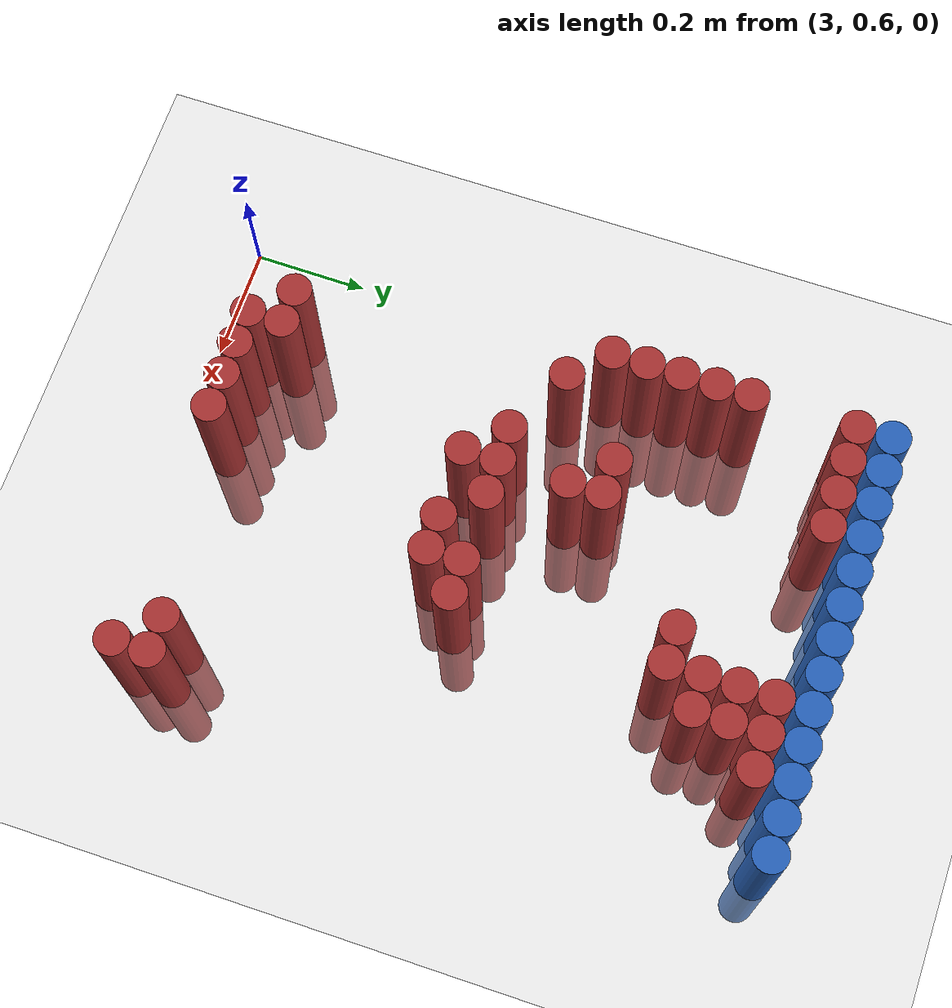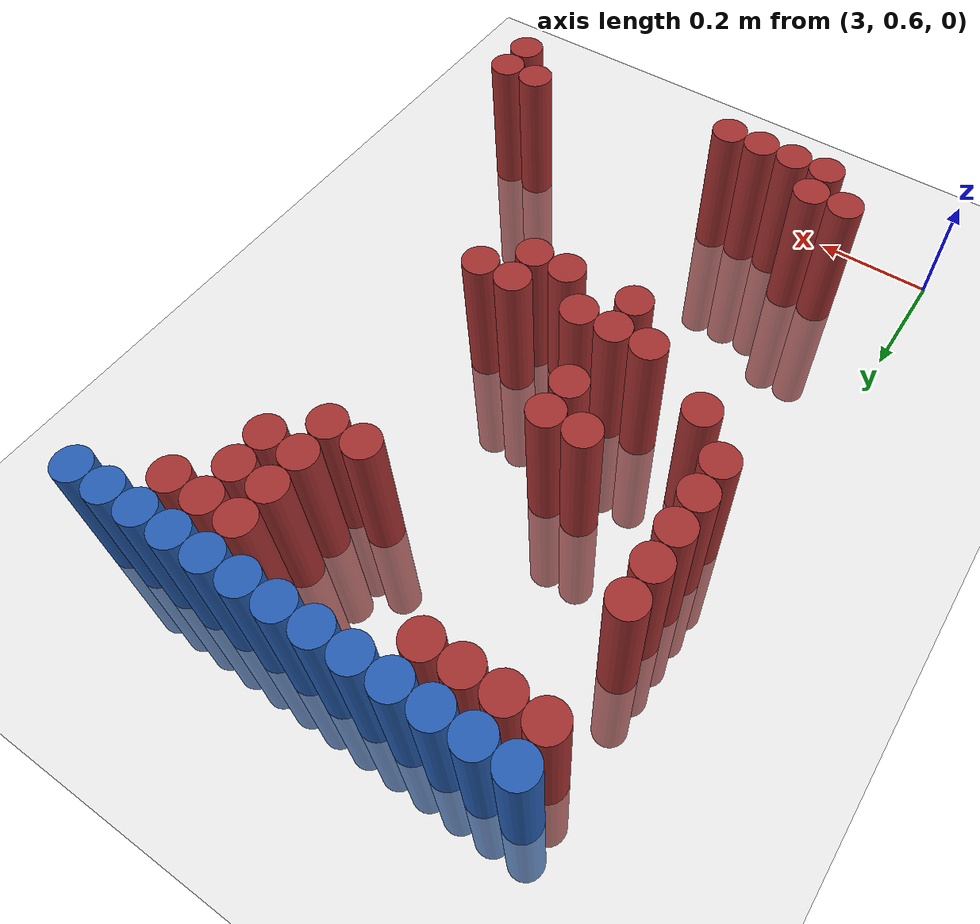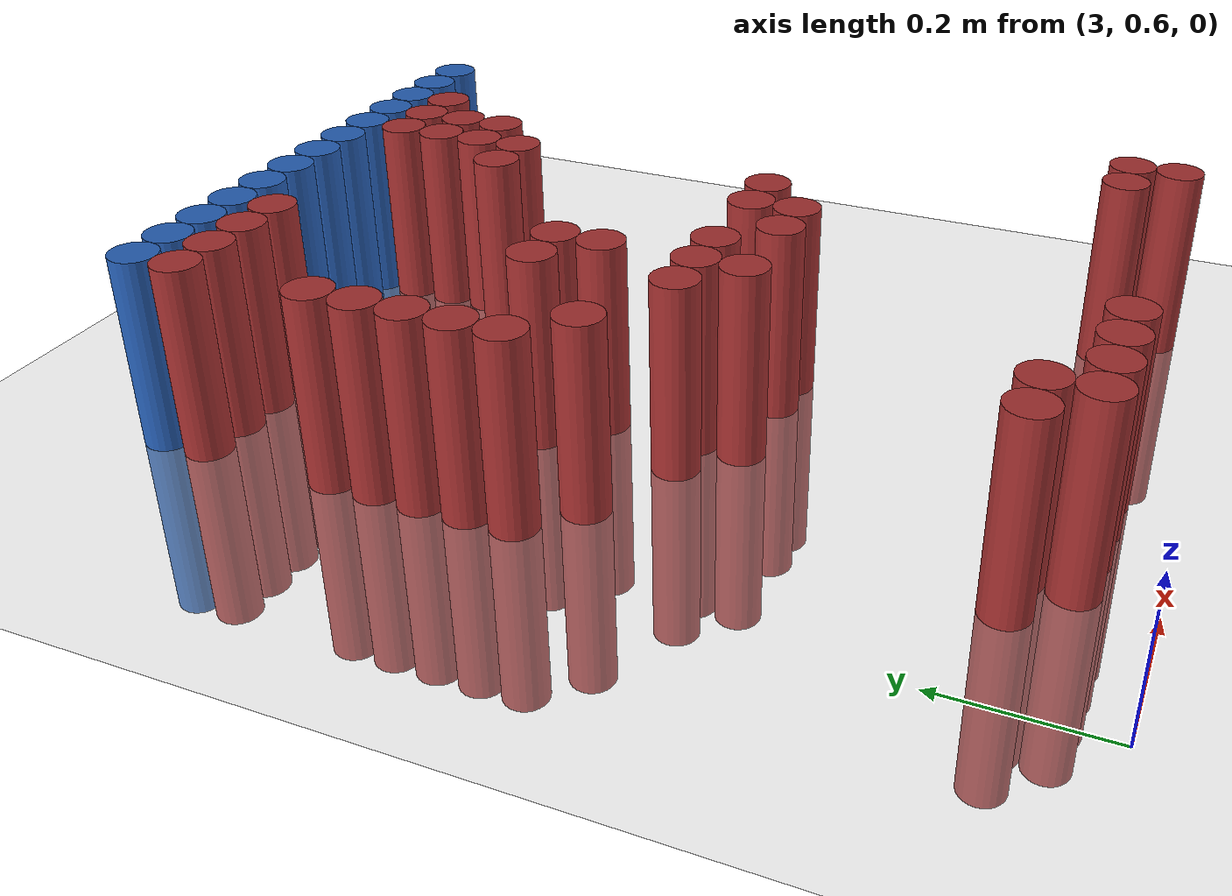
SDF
<sdf version="1.6">
 <world name="default">
  <model name="ground_plane">
   <static>1</static>
   <link name="link">
    <collision name="collision">
     <geometry><plane><normal>0 0 1</normal><size>100 100</size></plane></geometry>
     <surface><friction><ode><mu>100</mu><mu2>50</mu2></ode></friction></surface>
    </collision>
    <visual name="visual">
     <cast_shadows>0</cast_shadows>
     <geometry><plane><normal>0 0 1</normal><size>100 100</size></plane></geometry>
     <material>
      <script><uri>file://media/materials/scripts/gazebo.material</uri><name>Gazebo/Grey</name></script>
     </material>
    </visual>
   </link>
  </model>
  <model name="unit_cylinder_112">
   <static>1</static>
   <pose>3.090000 1.770000 0.000000 0.000000 0.000000 0.000000</pose>
   <link name="link">
    <inertial>
     <mass>1</mass>
     <inertia><ixx>0.145833</ixx><ixy>0</ixy><ixz>0</ixz><iyy>0.145833</iyy><iyz>0</iyz><izz>0.125</izz></inertia>
    </inertial>
    <collision name="collision">
     <geometry><cylinder><radius>0.030000</radius><length>0.5</length></cylinder></geometry>
    </collision>
    <visual name="visual">
     <geometry><cylinder><radius>0.030000</radius><length>0.5</length></cylinder></geometry>
     <material>
      <ambient>0.152000 0.379000 0.720000 1</ambient>
      <diffuse>0.152000 0.379000 0.720000 1</diffuse>
     </material>
     <material>
      <script><name>Gazebo/Grey</name><uri>file://media/materials/scripts/gazebo.material</uri></script>
     </material>
    </visual>
   </link>
  </model>
  <model name="unit_cylinder_113">
   <static>1</static>
   <pose>3.150000 1.770000 0.000000 0.000000 0.000000 0.000000</pose>
   <link name="link">
    <inertial>
     <mass>1</mass>
     <inertia><ixx>0.145833</ixx><ixy>0</ixy><ixz>0</ixz><iyy>0.145833</iyy><iyz>0</iyz><izz>0.125</izz></inertia>
    </inertial>
    <collision name="collision">
     <geometry><cylinder><radius>0.030000</radius><length>0.5</length></cylinder></geometry>
    </collision>
    <visual name="visual">
     <geometry><cylinder><radius>0.030000</radius><length>0.5</length></cylinder></geometry>
     <material>
      <ambient>0.152000 0.379000 0.720000 1</ambient>
      <diffuse>0.152000 0.379000 0.720000 1</diffuse>
     </material>
     <material>
      <script><name>Gazebo/Grey</name><uri>file://media/materials/scripts/gazebo.material</uri></script>
     </material>
    </visual>
   </link>
  </model>
  <model name="unit_cylinder_114">
   <static>1</static>
   <pose>3.210000 1.770000 0.000000 0.000000 0.000000 0.000000</pose>
   <link name="link">
    <inertial>
     <mass>1</mass>
     <inertia><ixx>0.145833</ixx><ixy>0</ixy><ixz>0</ixz><iyy>0.145833</iyy><iyz>0</iyz><izz>0.125</izz></inertia>
    </inertial>
    <collision name="collision">
     <geometry><cylinder><radius>0.030000</radius><length>0.5</length></cylinder></geometry>
    </collision>
    <visual name="visual">
     <geometry><cylinder><radius>0.030000</radius><length>0.5</length></cylinder></geometry>
     <material>
      <ambient>0.152000 0.379000 0.720000 1</ambient>
      <diffuse>0.152000 0.379000 0.720000 1</diffuse>
     </material>
     <material>
      <script><name>Gazebo/Grey</name><uri>file://media/materials/scripts/gazebo.material</uri></script>
     </material>
    </visual>
   </link>
  </model>
  <model name="unit_cylinder_115">
   <static>1</static>
   <pose>3.270000 1.770000 0.000000 0.000000 0.000000 0.000000</pose>
   <link name="link">
    <inertial>
     <mass>1</mass>
     <inertia><ixx>0.145833</ixx><ixy>0</ixy><ixz>0</ixz><iyy>0.145833</iyy><iyz>0</iyz><izz>0.125</izz></inertia>
    </inertial>
    <collision name="collision">
     <geometry><cylinder><radius>0.030000</radius><length>0.5</length></cylinder></geometry>
    </collision>
    <visual name="visual">
     <geometry><cylinder><radius>0.030000</radius><length>0.5</length></cylinder></geometry>
     <material>
      <ambient>0.152000 0.379000 0.720000 1</ambient>
      <diffuse>0.152000 0.379000 0.720000 1</diffuse>
     </material>
     <material>
      <script><name>Gazebo/Grey</name><uri>file://media/materials/scripts/gazebo.material</uri></script>
     </material>
    </visual>
   </link>
  </model>
  <model name="unit_cylinder_116">
   <static>1</static>
   <pose>3.330000 1.770000 0.000000 0.000000 0.000000 0.000000</pose>
   <link name="link">
    <inertial>
     <mass>1</mass>
     <inertia><ixx>0.145833</ixx><ixy>0</ixy><ixz>0</ixz><iyy>0.145833</iyy><iyz>0</iyz><izz>0.125</izz></inertia>
    </inertial>
    <collision name="collision">
     <geometry><cylinder><radius>0.030000</radius><length>0.5</length></cylinder></geometry>
    </collision>
    <visual name="visual">
     <geometry><cylinder><radius>0.030000</radius><length>0.5</length></cylinder></geometry>
     <material>
      <ambient>0.152000 0.379000 0.720000 1</ambient>
      <diffuse>0.152000 0.379000 0.720000 1</diffuse>
     </material>
     <material>
      <script><name>Gazebo/Grey</name><uri>file://media/materials/scripts/gazebo.material</uri></script>
     </material>
    </visual>
   </link>
  </model>
  <model name="unit_cylinder_117">
   <static>1</static>
   <pose>3.390000 1.770000 0.000000 0.000000 0.000000 0.000000</pose>
   <link name="link">
    <inertial>
     <mass>1</mass>
     <inertia><ixx>0.145833</ixx><ixy>0</ixy><ixz>0</ixz><iyy>0.145833</iyy><iyz>0</iyz><izz>0.125</izz></inertia>
    </inertial>
    <collision name="collision">
     <geometry><cylinder><radius>0.030000</radius><length>0.5</length></cylinder></geometry>
    </collision>
    <visual name="visual">
     <geometry><cylinder><radius>0.030000</radius><length>0.5</length></cylinder></geometry>
     <material>
      <ambient>0.152000 0.379000 0.720000 1</ambient>
      <diffuse>0.152000 0.379000 0.720000 1</diffuse>
     </material>
     <material>
      <script><name>Gazebo/Grey</name><uri>file://media/materials/scripts/gazebo.material</uri></script>
     </material>
    </visual>
   </link>
  </model>
  <model name="unit_cylinder_118">
   <static>1</static>
   <pose>3.450000 1.770000 0.000000 0.000000 0.000000 0.000000</pose>
   <link name="link">
    <inertial>
     <mass>1</mass>
     <inertia><ixx>0.145833</ixx><ixy>0</ixy><ixz>0</ixz><iyy>0.145833</iyy><iyz>0</iyz><izz>0.125</izz></inertia>
    </inertial>
    <collision name="collision">
     <geometry><cylinder><radius>0.030000</radius><length>0.5</length></cylinder></geometry>
    </collision>
    <visual name="visual">
     <geometry><cylinder><radius>0.030000</radius><length>0.5</length></cylinder></geometry>
     <material>
      <ambient>0.152000 0.379000 0.720000 1</ambient>
      <diffuse>0.152000 0.379000 0.720000 1</diffuse>
     </material>
     <material>
      <script><name>Gazebo/Grey</name><uri>file://media/materials/scripts/gazebo.material</uri></script>
     </material>
    </visual>
   </link>
  </model>
  <model name="unit_cylinder_119">
   <static>1</static>
   <pose>3.510000 1.770000 0.000000 0.000000 0.000000 0.000000</pose>
   <link name="link">
    <inertial>
     <mass>1</mass>
     <inertia><ixx>0.145833</ixx><ixy>0</ixy><ixz>0</ixz><iyy>0.145833</iyy><iyz>0</iyz><izz>0.125</izz></inertia>
    </inertial>
    <collision name="collision">
     <geometry><cylinder><radius>0.030000</radius><length>0.5</length></cylinder></geometry>
    </collision>
    <visual name="visual">
     <geometry><cylinder><radius>0.030000</radius><length>0.5</length></cylinder></geometry>
     <material>
      <ambient>0.152000 0.379000 0.720000 1</ambient>
      <diffuse>0.152000 0.379000 0.720000 1</diffuse>
     </material>
     <material>
      <script><name>Gazebo/Grey</name><uri>file://media/materials/scripts/gazebo.material</uri></script>
     </material>
    </visual>
   </link>
  </model>
  <model name="unit_cylinder_120">
   <static>1</static>
   <pose>3.570000 1.770000 0.000000 0.000000 0.000000 0.000000</pose>
   <link name="link">
    <inertial>
     <mass>1</mass>
     <inertia><ixx>0.145833</ixx><ixy>0</ixy><ixz>0</ixz><iyy>0.145833</iyy><iyz>0</iyz><izz>0.125</izz></inertia>
    </inertial>
    <collision name="collision">
     <geometry><cylinder><radius>0.030000</radius><length>0.5</length></cylinder></geometry>
    </collision>
    <visual name="visual">
     <geometry><cylinder><radius>0.030000</radius><length>0.5</length></cylinder></geometry>
     <material>
      <ambient>0.152000 0.379000 0.720000 1</ambient>
      <diffuse>0.152000 0.379000 0.720000 1</diffuse>
     </material>
     <material>
      <script><name>Gazebo/Grey</name><uri>file://media/materials/scripts/gazebo.material</uri></script>
     </material>
    </visual>
   </link>
  </model>
  <model name="unit_cylinder_121">
   <static>1</static>
   <pose>3.630000 1.770000 0.000000 0.000000 0.000000 0.000000</pose>
   <link name="link">
    <inertial>
     <mass>1</mass>
     <inertia><ixx>0.145833</ixx><ixy>0</ixy><ixz>0</ixz><iyy>0.145833</iyy><iyz>0</iyz><izz>0.125</izz></inertia>
    </inertial>
    <collision name="collision">
     <geometry><cylinder><radius>0.030000</radius><length>0.5</length></cylinder></geometry>
    </collision>
    <visual name="visual">
     <geometry><cylinder><radius>0.030000</radius><length>0.5</length></cylinder></geometry>
     <material>
      <ambient>0.152000 0.379000 0.720000 1</ambient>
      <diffuse>0.152000 0.379000 0.720000 1</diffuse>
     </material>
     <material>
      <script><name>Gazebo/Grey</name><uri>file://media/materials/scripts/gazebo.material</uri></script>
     </material>
    </visual>
   </link>
  </model>
  <model name="unit_cylinder_122">
   <static>1</static>
   <pose>3.690000 1.770000 0.000000 0.000000 0.000000 0.000000</pose>
   <link name="link">
    <inertial>
     <mass>1</mass>
     <inertia><ixx>0.145833</ixx><ixy>0</ixy><ixz>0</ixz><iyy>0.145833</iyy><iyz>0</iyz><izz>0.125</izz></inertia>
    </inertial>
    <collision name="collision">
     <geometry><cylinder><radius>0.030000</radius><length>0.5</length></cylinder></geometry>
    </collision>
    <visual name="visual">
     <geometry><cylinder><radius>0.030000</radius><length>0.5</length></cylinder></geometry>
     <material>
      <ambient>0.152000 0.379000 0.720000 1</ambient>
      <diffuse>0.152000 0.379000 0.720000 1</diffuse>
     </material>
     <material>
      <script><name>Gazebo/Grey</name><uri>file://media/materials/scripts/gazebo.material</uri></script>
     </material>
    </visual>
   </link>
  </model>
  <model name="unit_cylinder_123">
   <static>1</static>
   <pose>3.750000 1.770000 0.000000 0.000000 0.000000 0.000000</pose>
   <link name="link">
    <inertial>
     <mass>1</mass>
     <inertia><ixx>0.145833</ixx><ixy>0</ixy><ixz>0</ixz><iyy>0.145833</iyy><iyz>0</iyz><izz>0.125</izz></inertia>
    </inertial>
    <collision name="collision">
     <geometry><cylinder><radius>0.030000</radius><length>0.5</length></cylinder></geometry>
    </collision>
    <visual name="visual">
     <geometry><cylinder><radius>0.030000</radius><length>0.5</length></cylinder></geometry>
     <material>
      <ambient>0.152000 0.379000 0.720000 1</ambient>
      <diffuse>0.152000 0.379000 0.720000 1</diffuse>
     </material>
     <material>
      <script><name>Gazebo/Grey</name><uri>file://media/materials/scripts/gazebo.material</uri></script>
     </material>
    </visual>
   </link>
  </model>
  <model name="unit_cylinder_124">
   <static>1</static>
   <pose>3.810000 1.770000 0.000000 0.000000 0.000000 0.000000</pose>
   <link name="link">
    <inertial>
     <mass>1</mass>
     <inertia><ixx>0.145833</ixx><ixy>0</ixy><ixz>0</ixz><iyy>0.145833</iyy><iyz>0</iyz><izz>0.125</izz></inertia>
    </inertial>
    <collision name="collision">
     <geometry><cylinder><radius>0.030000</radius><length>0.5</length></cylinder></geometry>
    </collision>
    <visual name="visual">
     <geometry><cylinder><radius>0.030000</radius><length>0.5</length></cylinder></geometry>
     <material>
      <ambient>0.152000 0.379000 0.720000 1</ambient>
      <diffuse>0.152000 0.379000 0.720000 1</diffuse>
     </material>
     <material>
      <script><name>Gazebo/Grey</name><uri>file://media/materials/scripts/gazebo.material</uri></script>
     </material>
    </visual>
   </link>
  </model>
  <model name="unit_cylinder_132">
   <static>1</static>
   <pose>3.090000 1.710000 0.000000 0.000000 0.000000 0.000000</pose>
   <link name="link">
    <inertial>
     <mass>1</mass>
     <inertia><ixx>0.145833</ixx><ixy>0</ixy><ixz>0</ixz><iyy>0.145833</iyy><iyz>0</iyz><izz>0.125</izz></inertia>
    </inertial>
    <collision name="collision">
     <geometry><cylinder><radius>0.030000</radius><length>0.5</length></cylinder></geometry>
    </collision>
    <visual name="visual">
     <geometry><cylinder><radius>0.030000</radius><length>0.5</length></cylinder></geometry>
     <material>
      <ambient>0.648000 0.192000 0.192000 1</ambient>
      <diffuse>0.648000 0.192000 0.192000 1</diffuse>
     </material>
     <material>
      <script><name>Gazebo/Grey</name><uri>file://media/materials/scripts/gazebo.material</uri></script>
     </material>
    </visual>
   </link>
  </model>
  <model name="unit_cylinder_133">
   <static>1</static>
   <pose>3.150000 1.710000 0.000000 0.000000 0.000000 0.000000</pose>
   <link name="link">
    <inertial>
     <mass>1</mass>
     <inertia><ixx>0.145833</ixx><ixy>0</ixy><ixz>0</ixz><iyy>0.145833</iyy><iyz>0</iyz><izz>0.125</izz></inertia>
    </inertial>
    <collision name="collision">
     <geometry><cylinder><radius>0.030000</radius><length>0.5</length></cylinder></geometry>
    </collision>
    <visual name="visual">
     <geometry><cylinder><radius>0.030000</radius><length>0.5</length></cylinder></geometry>
     <material>
      <ambient>0.648000 0.192000 0.192000 1</ambient>
      <diffuse>0.648000 0.192000 0.192000 1</diffuse>
     </material>
     <material>
      <script><name>Gazebo/Grey</name><uri>file://media/materials/scripts/gazebo.material</uri></script>
     </material>
    </visual>
   </link>
  </model>
  <model name="unit_cylinder_134">
   <static>1</static>
   <pose>3.210000 1.710000 0.000000 0.000000 0.000000 0.000000</pose>
   <link name="link">
    <inertial>
     <mass>1</mass>
     <inertia><ixx>0.145833</ixx><ixy>0</ixy><ixz>0</ixz><iyy>0.145833</iyy><iyz>0</iyz><izz>0.125</izz></inertia>
    </inertial>
    <collision name="collision">
     <geometry><cylinder><radius>0.030000</radius><length>0.5</length></cylinder></geometry>
    </collision>
    <visual name="visual">
     <geometry><cylinder><radius>0.030000</radius><length>0.5</length></cylinder></geometry>
     <material>
      <ambient>0.648000 0.192000 0.192000 1</ambient>
      <diffuse>0.648000 0.192000 0.192000 1</diffuse>
     </material>
     <material>
      <script><name>Gazebo/Grey</name><uri>file://media/materials/scripts/gazebo.material</uri></script>
     </material>
    </visual>
   </link>
  </model>
  <model name="unit_cylinder_135">
   <static>1</static>
   <pose>3.270000 1.710000 0.000000 0.000000 0.000000 0.000000</pose>
   <link name="link">
    <inertial>
     <mass>1</mass>
     <inertia><ixx>0.145833</ixx><ixy>0</ixy><ixz>0</ixz><iyy>0.145833</iyy><iyz>0</iyz><izz>0.125</izz></inertia>
    </inertial>
    <collision name="collision">
     <geometry><cylinder><radius>0.030000</radius><length>0.5</length></cylinder></geometry>
    </collision>
    <visual name="visual">
     <geometry><cylinder><radius>0.030000</radius><length>0.5</length></cylinder></geometry>
     <material>
      <ambient>0.648000 0.192000 0.192000 1</ambient>
      <diffuse>0.648000 0.192000 0.192000 1</diffuse>
     </material>
     <material>
      <script><name>Gazebo/Grey</name><uri>file://media/materials/scripts/gazebo.material</uri></script>
     </material>
    </visual>
   </link>
  </model>
  <model name="unit_cylinder_136">
   <static>1</static>
   <pose>3.570000 1.710000 0.000000 0.000000 0.000000 0.000000</pose>
   <link name="link">
    <inertial>
     <mass>1</mass>
     <inertia><ixx>0.145833</ixx><ixy>0</ixy><ixz>0</ixz><iyy>0.145833</iyy><iyz>0</iyz><izz>0.125</izz></inertia>
    </inertial>
    <collision name="collision">
     <geometry><cylinder><radius>0.030000</radius><length>0.5</length></cylinder></geometry>
    </collision>
    <visual name="visual">
     <geometry><cylinder><radius>0.030000</radius><length>0.5</length></cylinder></geometry>
     <material>
      <ambient>0.648000 0.192000 0.192000 1</ambient>
      <diffuse>0.648000 0.192000 0.192000 1</diffuse>
     </material>
     <material>
      <script><name>Gazebo/Grey</name><uri>file://media/materials/scripts/gazebo.material</uri></script>
     </material>
    </visual>
   </link>
  </model>
  <model name="unit_cylinder_137">
   <static>1</static>
   <pose>3.630000 1.710000 0.000000 0.000000 0.000000 0.000000</pose>
   <link name="link">
    <inertial>
     <mass>1</mass>
     <inertia><ixx>0.145833</ixx><ixy>0</ixy><ixz>0</ixz><iyy>0.145833</iyy><iyz>0</iyz><izz>0.125</izz></inertia>
    </inertial>
    <collision name="collision">
     <geometry><cylinder><radius>0.030000</radius><length>0.5</length></cylinder></geometry>
    </collision>
    <visual name="visual">
     <geometry><cylinder><radius>0.030000</radius><length>0.5</length></cylinder></geometry>
     <material>
      <ambient>0.648000 0.192000 0.192000 1</ambient>
      <diffuse>0.648000 0.192000 0.192000 1</diffuse>
     </material>
     <material>
      <script><name>Gazebo/Grey</name><uri>file://media/materials/scripts/gazebo.material</uri></script>
     </material>
    </visual>
   </link>
  </model>
  <model name="unit_cylinder_138">
   <static>1</static>
   <pose>3.690000 1.710000 0.000000 0.000000 0.000000 0.000000</pose>
   <link name="link">
    <inertial>
     <mass>1</mass>
     <inertia><ixx>0.145833</ixx><ixy>0</ixy><ixz>0</ixz><iyy>0.145833</iyy><iyz>0</iyz><izz>0.125</izz></inertia>
    </inertial>
    <collision name="collision">
     <geometry><cylinder><radius>0.030000</radius><length>0.5</length></cylinder></geometry>
    </collision>
    <visual name="visual">
     <geometry><cylinder><radius>0.030000</radius><length>0.5</length></cylinder></geometry>
     <material>
      <ambient>0.648000 0.192000 0.192000 1</ambient>
      <diffuse>0.648000 0.192000 0.192000 1</diffuse>
     </material>
     <material>
      <script><name>Gazebo/Grey</name><uri>file://media/materials/scripts/gazebo.material</uri></script>
     </material>
    </visual>
   </link>
  </model>
  <model name="unit_cylinder_145">
   <static>1</static>
   <pose>3.570000 1.650000 0.000000 0.000000 0.000000 0.000000</pose>
   <link name="link">
    <inertial>
     <mass>1</mass>
     <inertia><ixx>0.145833</ixx><ixy>0</ixy><ixz>0</ixz><iyy>0.145833</iyy><iyz>0</iyz><izz>0.125</izz></inertia>
    </inertial>
    <collision name="collision">
     <geometry><cylinder><radius>0.030000</radius><length>0.5</length></cylinder></geometry>
    </collision>
    <visual name="visual">
     <geometry><cylinder><radius>0.030000</radius><length>0.5</length></cylinder></geometry>
     <material>
      <ambient>0.648000 0.192000 0.192000 1</ambient>
      <diffuse>0.648000 0.192000 0.192000 1</diffuse>
     </material>
     <material>
      <script><name>Gazebo/Grey</name><uri>file://media/materials/scripts/gazebo.material</uri></script>
     </material>
    </visual>
   </link>
  </model>
  <model name="unit_cylinder_146">
   <static>1</static>
   <pose>3.630000 1.650000 0.000000 0.000000 0.000000 0.000000</pose>
   <link name="link">
    <inertial>
     <mass>1</mass>
     <inertia><ixx>0.145833</ixx><ixy>0</ixy><ixz>0</ixz><iyy>0.145833</iyy><iyz>0</iyz><izz>0.125</izz></inertia>
    </inertial>
    <collision name="collision">
     <geometry><cylinder><radius>0.030000</radius><length>0.5</length></cylinder></geometry>
    </collision>
    <visual name="visual">
     <geometry><cylinder><radius>0.030000</radius><length>0.5</length></cylinder></geometry>
     <material>
      <ambient>0.648000 0.192000 0.192000 1</ambient>
      <diffuse>0.648000 0.192000 0.192000 1</diffuse>
     </material>
     <material>
      <script><name>Gazebo/Grey</name><uri>file://media/materials/scripts/gazebo.material</uri></script>
     </material>
    </visual>
   </link>
  </model>
  <model name="unit_cylinder_152">
   <static>1</static>
   <pose>3.570000 1.590000 0.000000 0.000000 0.000000 0.000000</pose>
   <link name="link">
    <inertial>
     <mass>1</mass>
     <inertia><ixx>0.145833</ixx><ixy>0</ixy><ixz>0</ixz><iyy>0.145833</iyy><iyz>0</iyz><izz>0.125</izz></inertia>
    </inertial>
    <collision name="collision">
     <geometry><cylinder><radius>0.030000</radius><length>0.5</length></cylinder></geometry>
    </collision>
    <visual name="visual">
     <geometry><cylinder><radius>0.030000</radius><length>0.5</length></cylinder></geometry>
     <material>
      <ambient>0.648000 0.192000 0.192000 1</ambient>
      <diffuse>0.648000 0.192000 0.192000 1</diffuse>
     </material>
     <material>
      <script><name>Gazebo/Grey</name><uri>file://media/materials/scripts/gazebo.material</uri></script>
     </material>
    </visual>
   </link>
  </model>
  <model name="unit_cylinder_153">
   <static>1</static>
   <pose>3.630000 1.590000 0.000000 0.000000 0.000000 0.000000</pose>
   <link name="link">
    <inertial>
     <mass>1</mass>
     <inertia><ixx>0.145833</ixx><ixy>0</ixy><ixz>0</ixz><iyy>0.145833</iyy><iyz>0</iyz><izz>0.125</izz></inertia>
    </inertial>
    <collision name="collision">
     <geometry><cylinder><radius>0.030000</radius><length>0.5</length></cylinder></geometry>
    </collision>
    <visual name="visual">
     <geometry><cylinder><radius>0.030000</radius><length>0.5</length></cylinder></geometry>
     <material>
      <ambient>0.648000 0.192000 0.192000 1</ambient>
      <diffuse>0.648000 0.192000 0.192000 1</diffuse>
     </material>
     <material>
      <script><name>Gazebo/Grey</name><uri>file://media/materials/scripts/gazebo.material</uri></script>
     </material>
    </visual>
   </link>
  </model>
  <model name="unit_cylinder_164">
   <static>1</static>
   <pose>3.090000 1.530000 0.000000 0.000000 0.000000 0.000000</pose>
   <link name="link">
    <inertial>
     <mass>1</mass>
     <inertia><ixx>0.145833</ixx><ixy>0</ixy><ixz>0</ixz><iyy>0.145833</iyy><iyz>0</iyz><izz>0.125</izz></inertia>
    </inertial>
    <collision name="collision">
     <geometry><cylinder><radius>0.030000</radius><length>0.5</length></cylinder></geometry>
    </collision>
    <visual name="visual">
     <geometry><cylinder><radius>0.030000</radius><length>0.5</length></cylinder></geometry>
     <material>
      <ambient>0.648000 0.192000 0.192000 1</ambient>
      <diffuse>0.648000 0.192000 0.192000 1</diffuse>
     </material>
     <material>
      <script><name>Gazebo/Grey</name><uri>file://media/materials/scripts/gazebo.material</uri></script>
     </material>
    </visual>
   </link>
  </model>
  <model name="unit_cylinder_165">
   <static>1</static>
   <pose>3.510000 1.530000 0.000000 0.000000 0.000000 0.000000</pose>
   <link name="link">
    <inertial>
     <mass>1</mass>
     <inertia><ixx>0.145833</ixx><ixy>0</ixy><ixz>0</ixz><iyy>0.145833</iyy><iyz>0</iyz><izz>0.125</izz></inertia>
    </inertial>
    <collision name="collision">
     <geometry><cylinder><radius>0.030000</radius><length>0.5</length></cylinder></geometry>
    </collision>
    <visual name="visual">
     <geometry><cylinder><radius>0.030000</radius><length>0.5</length></cylinder></geometry>
     <material>
      <ambient>0.648000 0.192000 0.192000 1</ambient>
      <diffuse>0.648000 0.192000 0.192000 1</diffuse>
     </material>
     <material>
      <script><name>Gazebo/Grey</name><uri>file://media/materials/scripts/gazebo.material</uri></script>
     </material>
    </visual>
   </link>
  </model>
  <model name="unit_cylinder_166">
   <static>1</static>
   <pose>3.570000 1.530000 0.000000 0.000000 0.000000 0.000000</pose>
   <link name="link">
    <inertial>
     <mass>1</mass>
     <inertia><ixx>0.145833</ixx><ixy>0</ixy><ixz>0</ixz><iyy>0.145833</iyy><iyz>0</iyz><izz>0.125</izz></inertia>
    </inertial>
    <collision name="collision">
     <geometry><cylinder><radius>0.030000</radius><length>0.5</length></cylinder></geometry>
    </collision>
    <visual name="visual">
     <geometry><cylinder><radius>0.030000</radius><length>0.5</length></cylinder></geometry>
     <material>
      <ambient>0.648000 0.192000 0.192000 1</ambient>
      <diffuse>0.648000 0.192000 0.192000 1</diffuse>
     </material>
     <material>
      <script><name>Gazebo/Grey</name><uri>file://media/materials/scripts/gazebo.material</uri></script>
     </material>
    </visual>
   </link>
  </model>
  <model name="unit_cylinder_176">
   <static>1</static>
   <pose>3.090000 1.470000 0.000000 0.000000 0.000000 0.000000</pose>
   <link name="link">
    <inertial>
     <mass>1</mass>
     <inertia><ixx>0.145833</ixx><ixy>0</ixy><ixz>0</ixz><iyy>0.145833</iyy><iyz>0</iyz><izz>0.125</izz></inertia>
    </inertial>
    <collision name="collision">
     <geometry><cylinder><radius>0.030000</radius><length>0.5</length></cylinder></geometry>
    </collision>
    <visual name="visual">
     <geometry><cylinder><radius>0.030000</radius><length>0.5</length></cylinder></geometry>
     <material>
      <ambient>0.648000 0.192000 0.192000 1</ambient>
      <diffuse>0.648000 0.192000 0.192000 1</diffuse>
     </material>
     <material>
      <script><name>Gazebo/Grey</name><uri>file://media/materials/scripts/gazebo.material</uri></script>
     </material>
    </visual>
   </link>
  </model>
  <model name="unit_cylinder_182">
   <static>1</static>
   <pose>3.090000 1.410000 0.000000 0.000000 0.000000 0.000000</pose>
   <link name="link">
    <inertial>
     <mass>1</mass>
     <inertia><ixx>0.145833</ixx><ixy>0</ixy><ixz>0</ixz><iyy>0.145833</iyy><iyz>0</iyz><izz>0.125</izz></inertia>
    </inertial>
    <collision name="collision">
     <geometry><cylinder><radius>0.030000</radius><length>0.5</length></cylinder></geometry>
    </collision>
    <visual name="visual">
     <geometry><cylinder><radius>0.030000</radius><length>0.5</length></cylinder></geometry>
     <material>
      <ambient>0.648000 0.192000 0.192000 1</ambient>
      <diffuse>0.648000 0.192000 0.192000 1</diffuse>
     </material>
     <material>
      <script><name>Gazebo/Grey</name><uri>file://media/materials/scripts/gazebo.material</uri></script>
     </material>
    </visual>
   </link>
  </model>
  <model name="unit_cylinder_187">
   <static>1</static>
   <pose>3.090000 1.350000 0.000000 0.000000 0.000000 0.000000</pose>
   <link name="link">
    <inertial>
     <mass>1</mass>
     <inertia><ixx>0.145833</ixx><ixy>0</ixy><ixz>0</ixz><iyy>0.145833</iyy><iyz>0</iyz><izz>0.125</izz></inertia>
    </inertial>
    <collision name="collision">
     <geometry><cylinder><radius>0.030000</radius><length>0.5</length></cylinder></geometry>
    </collision>
    <visual name="visual">
     <geometry><cylinder><radius>0.030000</radius><length>0.5</length></cylinder></geometry>
     <material>
      <ambient>0.648000 0.192000 0.192000 1</ambient>
      <diffuse>0.648000 0.192000 0.192000 1</diffuse>
     </material>
     <material>
      <script><name>Gazebo/Grey</name><uri>file://media/materials/scripts/gazebo.material</uri></script>
     </material>
    </visual>
   </link>
  </model>
  <model name="unit_cylinder_188">
   <static>1</static>
   <pose>3.270000 1.350000 0.000000 0.000000 0.000000 0.000000</pose>
   <link name="link">
    <inertial>
     <mass>1</mass>
     <inertia><ixx>0.145833</ixx><ixy>0</ixy><ixz>0</ixz><iyy>0.145833</iyy><iyz>0</iyz><izz>0.125</izz></inertia>
    </inertial>
    <collision name="collision">
     <geometry><cylinder><radius>0.030000</radius><length>0.5</length></cylinder></geometry>
    </collision>
    <visual name="visual">
     <geometry><cylinder><radius>0.030000</radius><length>0.5</length></cylinder></geometry>
     <material>
      <ambient>0.648000 0.192000 0.192000 1</ambient>
      <diffuse>0.648000 0.192000 0.192000 1</diffuse>
     </material>
     <material>
      <script><name>Gazebo/Grey</name><uri>file://media/materials/scripts/gazebo.material</uri></script>
     </material>
    </visual>
   </link>
  </model>
  <model name="unit_cylinder_189">
   <static>1</static>
   <pose>3.330000 1.350000 0.000000 0.000000 0.000000 0.000000</pose>
   <link name="link">
    <inertial>
     <mass>1</mass>
     <inertia><ixx>0.145833</ixx><ixy>0</ixy><ixz>0</ixz><iyy>0.145833</iyy><iyz>0</iyz><izz>0.125</izz></inertia>
    </inertial>
    <collision name="collision">
     <geometry><cylinder><radius>0.030000</radius><length>0.5</length></cylinder></geometry>
    </collision>
    <visual name="visual">
     <geometry><cylinder><radius>0.030000</radius><length>0.5</length></cylinder></geometry>
     <material>
      <ambient>0.648000 0.192000 0.192000 1</ambient>
      <diffuse>0.648000 0.192000 0.192000 1</diffuse>
     </material>
     <material>
      <script><name>Gazebo/Grey</name><uri>file://media/materials/scripts/gazebo.material</uri></script>
     </material>
    </visual>
   </link>
  </model>
  <model name="unit_cylinder_193">
   <static>1</static>
   <pose>3.090000 1.290000 0.000000 0.000000 0.000000 0.000000</pose>
   <link name="link">
    <inertial>
     <mass>1</mass>
     <inertia><ixx>0.145833</ixx><ixy>0</ixy><ixz>0</ixz><iyy>0.145833</iyy><iyz>0</iyz><izz>0.125</izz></inertia>
    </inertial>
    <collision name="collision">
     <geometry><cylinder><radius>0.030000</radius><length>0.5</length></cylinder></geometry>
    </collision>
    <visual name="visual">
     <geometry><cylinder><radius>0.030000</radius><length>0.5</length></cylinder></geometry>
     <material>
      <ambient>0.648000 0.192000 0.192000 1</ambient>
      <diffuse>0.648000 0.192000 0.192000 1</diffuse>
     </material>
     <material>
      <script><name>Gazebo/Grey</name><uri>file://media/materials/scripts/gazebo.material</uri></script>
     </material>
    </visual>
   </link>
  </model>
  <model name="unit_cylinder_194">
   <static>1</static>
   <pose>3.330000 1.290000 0.000000 0.000000 0.000000 0.000000</pose>
   <link name="link">
    <inertial>
     <mass>1</mass>
     <inertia><ixx>0.145833</ixx><ixy>0</ixy><ixz>0</ixz><iyy>0.145833</iyy><iyz>0</iyz><izz>0.125</izz></inertia>
    </inertial>
    <collision name="collision">
     <geometry><cylinder><radius>0.030000</radius><length>0.5</length></cylinder></geometry>
    </collision>
    <visual name="visual">
     <geometry><cylinder><radius>0.030000</radius><length>0.5</length></cylinder></geometry>
     <material>
      <ambient>0.648000 0.192000 0.192000 1</ambient>
      <diffuse>0.648000 0.192000 0.192000 1</diffuse>
     </material>
     <material>
      <script><name>Gazebo/Grey</name><uri>file://media/materials/scripts/gazebo.material</uri></script>
     </material>
    </visual>
   </link>
  </model>
  <model name="unit_cylinder_199">
   <static>1</static>
   <pose>3.150000 1.230000 0.000000 0.000000 0.000000 0.000000</pose>
   <link name="link">
    <inertial>
     <mass>1</mass>
     <inertia><ixx>0.145833</ixx><ixy>0</ixy><ixz>0</ixz><iyy>0.145833</iyy><iyz>0</iyz><izz>0.125</izz></inertia>
    </inertial>
    <collision name="collision">
     <geometry><cylinder><radius>0.030000</radius><length>0.5</length></cylinder></geometry>
    </collision>
    <visual name="visual">
     <geometry><cylinder><radius>0.030000</radius><length>0.5</length></cylinder></geometry>
     <material>
      <ambient>0.648000 0.192000 0.192000 1</ambient>
      <diffuse>0.648000 0.192000 0.192000 1</diffuse>
     </material>
     <material>
      <script><name>Gazebo/Grey</name><uri>file://media/materials/scripts/gazebo.material</uri></script>
     </material>
    </visual>
   </link>
  </model>
  <model name="unit_cylinder_209">
   <static>1</static>
   <pose>3.270000 1.170000 0.000000 0.000000 0.000000 0.000000</pose>
   <link name="link">
    <inertial>
     <mass>1</mass>
     <inertia><ixx>0.145833</ixx><ixy>0</ixy><ixz>0</ixz><iyy>0.145833</iyy><iyz>0</iyz><izz>0.125</izz></inertia>
    </inertial>
    <collision name="collision">
     <geometry><cylinder><radius>0.030000</radius><length>0.5</length></cylinder></geometry>
    </collision>
    <visual name="visual">
     <geometry><cylinder><radius>0.030000</radius><length>0.5</length></cylinder></geometry>
     <material>
      <ambient>0.648000 0.192000 0.192000 1</ambient>
      <diffuse>0.648000 0.192000 0.192000 1</diffuse>
     </material>
     <material>
      <script><name>Gazebo/Grey</name><uri>file://media/materials/scripts/gazebo.material</uri></script>
     </material>
    </visual>
   </link>
  </model>
  <model name="unit_cylinder_210">
   <static>1</static>
   <pose>3.330000 1.170000 0.000000 0.000000 0.000000 0.000000</pose>
   <link name="link">
    <inertial>
     <mass>1</mass>
     <inertia><ixx>0.145833</ixx><ixy>0</ixy><ixz>0</ixz><iyy>0.145833</iyy><iyz>0</iyz><izz>0.125</izz></inertia>
    </inertial>
    <collision name="collision">
     <geometry><cylinder><radius>0.030000</radius><length>0.5</length></cylinder></geometry>
    </collision>
    <visual name="visual">
     <geometry><cylinder><radius>0.030000</radius><length>0.5</length></cylinder></geometry>
     <material>
      <ambient>0.648000 0.192000 0.192000 1</ambient>
      <diffuse>0.648000 0.192000 0.192000 1</diffuse>
     </material>
     <material>
      <script><name>Gazebo/Grey</name><uri>file://media/materials/scripts/gazebo.material</uri></script>
     </material>
    </visual>
   </link>
  </model>
  <model name="unit_cylinder_211">
   <static>1</static>
   <pose>3.390000 1.170000 0.000000 0.000000 0.000000 0.000000</pose>
   <link name="link">
    <inertial>
     <mass>1</mass>
     <inertia><ixx>0.145833</ixx><ixy>0</ixy><ixz>0</ixz><iyy>0.145833</iyy><iyz>0</iyz><izz>0.125</izz></inertia>
    </inertial>
    <collision name="collision">
     <geometry><cylinder><radius>0.030000</radius><length>0.5</length></cylinder></geometry>
    </collision>
    <visual name="visual">
     <geometry><cylinder><radius>0.030000</radius><length>0.5</length></cylinder></geometry>
     <material>
      <ambient>0.648000 0.192000 0.192000 1</ambient>
      <diffuse>0.648000 0.192000 0.192000 1</diffuse>
     </material>
     <material>
      <script><name>Gazebo/Grey</name><uri>file://media/materials/scripts/gazebo.material</uri></script>
     </material>
    </visual>
   </link>
  </model>
  <model name="unit_cylinder_212">
   <static>1</static>
   <pose>3.510000 1.170000 0.000000 0.000000 0.000000 0.000000</pose>
   <link name="link">
    <inertial>
     <mass>1</mass>
     <inertia><ixx>0.145833</ixx><ixy>0</ixy><ixz>0</ixz><iyy>0.145833</iyy><iyz>0</iyz><izz>0.125</izz></inertia>
    </inertial>
    <collision name="collision">
     <geometry><cylinder><radius>0.030000</radius><length>0.5</length></cylinder></geometry>
    </collision>
    <visual name="visual">
     <geometry><cylinder><radius>0.030000</radius><length>0.5</length></cylinder></geometry>
     <material>
      <ambient>0.648000 0.192000 0.192000 1</ambient>
      <diffuse>0.648000 0.192000 0.192000 1</diffuse>
     </material>
     <material>
      <script><name>Gazebo/Grey</name><uri>file://media/materials/scripts/gazebo.material</uri></script>
     </material>
    </visual>
   </link>
  </model>
  <model name="unit_cylinder_213">
   <static>1</static>
   <pose>3.570000 1.170000 0.000000 0.000000 0.000000 0.000000</pose>
   <link name="link">
    <inertial>
     <mass>1</mass>
     <inertia><ixx>0.145833</ixx><ixy>0</ixy><ixz>0</ixz><iyy>0.145833</iyy><iyz>0</iyz><izz>0.125</izz></inertia>
    </inertial>
    <collision name="collision">
     <geometry><cylinder><radius>0.030000</radius><length>0.5</length></cylinder></geometry>
    </collision>
    <visual name="visual">
     <geometry><cylinder><radius>0.030000</radius><length>0.5</length></cylinder></geometry>
     <material>
      <ambient>0.648000 0.192000 0.192000 1</ambient>
      <diffuse>0.648000 0.192000 0.192000 1</diffuse>
     </material>
     <material>
      <script><name>Gazebo/Grey</name><uri>file://media/materials/scripts/gazebo.material</uri></script>
     </material>
    </visual>
   </link>
  </model>
  <model name="unit_cylinder_220">
   <static>1</static>
   <pose>3.330000 1.110000 0.000000 0.000000 0.000000 0.000000</pose>
   <link name="link">
    <inertial>
     <mass>1</mass>
     <inertia><ixx>0.145833</ixx><ixy>0</ixy><ixz>0</ixz><iyy>0.145833</iyy><iyz>0</iyz><izz>0.125</izz></inertia>
    </inertial>
    <collision name="collision">
     <geometry><cylinder><radius>0.030000</radius><length>0.5</length></cylinder></geometry>
    </collision>
    <visual name="visual">
     <geometry><cylinder><radius>0.030000</radius><length>0.5</length></cylinder></geometry>
     <material>
      <ambient>0.648000 0.192000 0.192000 1</ambient>
      <diffuse>0.648000 0.192000 0.192000 1</diffuse>
     </material>
     <material>
      <script><name>Gazebo/Grey</name><uri>file://media/materials/scripts/gazebo.material</uri></script>
     </material>
    </visual>
   </link>
  </model>
  <model name="unit_cylinder_221">
   <static>1</static>
   <pose>3.450000 1.110000 0.000000 0.000000 0.000000 0.000000</pose>
   <link name="link">
    <inertial>
     <mass>1</mass>
     <inertia><ixx>0.145833</ixx><ixy>0</ixy><ixz>0</ixz><iyy>0.145833</iyy><iyz>0</iyz><izz>0.125</izz></inertia>
    </inertial>
    <collision name="collision">
     <geometry><cylinder><radius>0.030000</radius><length>0.5</length></cylinder></geometry>
    </collision>
    <visual name="visual">
     <geometry><cylinder><radius>0.030000</radius><length>0.5</length></cylinder></geometry>
     <material>
      <ambient>0.648000 0.192000 0.192000 1</ambient>
      <diffuse>0.648000 0.192000 0.192000 1</diffuse>
     </material>
     <material>
      <script><name>Gazebo/Grey</name><uri>file://media/materials/scripts/gazebo.material</uri></script>
     </material>
    </visual>
   </link>
  </model>
  <model name="unit_cylinder_222">
   <static>1</static>
   <pose>3.510000 1.110000 0.000000 0.000000 0.000000 0.000000</pose>
   <link name="link">
    <inertial>
     <mass>1</mass>
     <inertia><ixx>0.145833</ixx><ixy>0</ixy><ixz>0</ixz><iyy>0.145833</iyy><iyz>0</iyz><izz>0.125</izz></inertia>
    </inertial>
    <collision name="collision">
     <geometry><cylinder><radius>0.030000</radius><length>0.5</length></cylinder></geometry>
    </collision>
    <visual name="visual">
     <geometry><cylinder><radius>0.030000</radius><length>0.5</length></cylinder></geometry>
     <material>
      <ambient>0.648000 0.192000 0.192000 1</ambient>
      <diffuse>0.648000 0.192000 0.192000 1</diffuse>
     </material>
     <material>
      <script><name>Gazebo/Grey</name><uri>file://media/materials/scripts/gazebo.material</uri></script>
     </material>
    </visual>
   </link>
  </model>
  <model name="unit_cylinder_224">
   <static>1</static>
   <pose>3.150000 0.750000 0.000000 0.000000 0.000000 0.000000</pose>
   <link name="link">
    <inertial>
     <mass>1</mass>
     <inertia><ixx>0.145833</ixx><ixy>0</ixy><ixz>0</ixz><iyy>0.145833</iyy><iyz>0</iyz><izz>0.125</izz></inertia>
    </inertial>
    <collision name="collision">
     <geometry><cylinder><radius>0.030000</radius><length>0.5</length></cylinder></geometry>
    </collision>
    <visual name="visual">
     <geometry><cylinder><radius>0.030000</radius><length>0.5</length></cylinder></geometry>
     <material>
      <ambient>0.648000 0.192000 0.192000 1</ambient>
      <diffuse>0.648000 0.192000 0.192000 1</diffuse>
     </material>
     <material>
      <script><name>Gazebo/Grey</name><uri>file://media/materials/scripts/gazebo.material</uri></script>
     </material>
    </visual>
   </link>
  </model>
  <model name="unit_cylinder_225">
   <static>1</static>
   <pose>3.210000 0.750000 0.000000 0.000000 0.000000 0.000000</pose>
   <link name="link">
    <inertial>
     <mass>1</mass>
     <inertia><ixx>0.145833</ixx><ixy>0</ixy><ixz>0</ixz><iyy>0.145833</iyy><iyz>0</iyz><izz>0.125</izz></inertia>
    </inertial>
    <collision name="collision">
     <geometry><cylinder><radius>0.030000</radius><length>0.5</length></cylinder></geometry>
    </collision>
    <visual name="visual">
     <geometry><cylinder><radius>0.030000</radius><length>0.5</length></cylinder></geometry>
     <material>
      <ambient>0.648000 0.192000 0.192000 1</ambient>
      <diffuse>0.648000 0.192000 0.192000 1</diffuse>
     </material>
     <material>
      <script><name>Gazebo/Grey</name><uri>file://media/materials/scripts/gazebo.material</uri></script>
     </material>
    </visual>
   </link>
  </model>
  <model name="unit_cylinder_226">
   <static>1</static>
   <pose>3.750000 0.750000 0.000000 0.000000 0.000000 0.000000</pose>
   <link name="link">
    <inertial>
     <mass>1</mass>
     <inertia><ixx>0.145833</ixx><ixy>0</ixy><ixz>0</ixz><iyy>0.145833</iyy><iyz>0</iyz><izz>0.125</izz></inertia>
    </inertial>
    <collision name="collision">
     <geometry><cylinder><radius>0.030000</radius><length>0.5</length></cylinder></geometry>
    </collision>
    <visual name="visual">
     <geometry><cylinder><radius>0.030000</radius><length>0.5</length></cylinder></geometry>
     <material>
      <ambient>0.648000 0.192000 0.192000 1</ambient>
      <diffuse>0.648000 0.192000 0.192000 1</diffuse>
     </material>
     <material>
      <script><name>Gazebo/Grey</name><uri>file://media/materials/scripts/gazebo.material</uri></script>
     </material>
    </visual>
   </link>
  </model>
  <model name="unit_cylinder_227">
   <static>1</static>
   <pose>3.810000 0.750000 0.000000 0.000000 0.000000 0.000000</pose>
   <link name="link">
    <inertial>
     <mass>1</mass>
     <inertia><ixx>0.145833</ixx><ixy>0</ixy><ixz>0</ixz><iyy>0.145833</iyy><iyz>0</iyz><izz>0.125</izz></inertia>
    </inertial>
    <collision name="collision">
     <geometry><cylinder><radius>0.030000</radius><length>0.5</length></cylinder></geometry>
    </collision>
    <visual name="visual">
     <geometry><cylinder><radius>0.030000</radius><length>0.5</length></cylinder></geometry>
     <material>
      <ambient>0.648000 0.192000 0.192000 1</ambient>
      <diffuse>0.648000 0.192000 0.192000 1</diffuse>
     </material>
     <material>
      <script><name>Gazebo/Grey</name><uri>file://media/materials/scripts/gazebo.material</uri></script>
     </material>
    </visual>
   </link>
  </model>
  <model name="unit_cylinder_228">
   <static>1</static>
   <pose>3.210000 0.690000 0.000000 0.000000 0.000000 0.000000</pose>
   <link name="link">
    <inertial>
     <mass>1</mass>
     <inertia><ixx>0.145833</ixx><ixy>0</ixy><ixz>0</ixz><iyy>0.145833</iyy><iyz>0</iyz><izz>0.125</izz></inertia>
    </inertial>
    <collision name="collision">
     <geometry><cylinder><radius>0.030000</radius><length>0.5</length></cylinder></geometry>
    </collision>
    <visual name="visual">
     <geometry><cylinder><radius>0.030000</radius><length>0.5</length></cylinder></geometry>
     <material>
      <ambient>0.648000 0.192000 0.192000 1</ambient>
      <diffuse>0.648000 0.192000 0.192000 1</diffuse>
     </material>
     <material>
      <script><name>Gazebo/Grey</name><uri>file://media/materials/scripts/gazebo.material</uri></script>
     </material>
    </visual>
   </link>
  </model>
  <model name="unit_cylinder_229">
   <static>1</static>
   <pose>3.270000 0.690000 0.000000 0.000000 0.000000 0.000000</pose>
   <link name="link">
    <inertial>
     <mass>1</mass>
     <inertia><ixx>0.145833</ixx><ixy>0</ixy><ixz>0</ixz><iyy>0.145833</iyy><iyz>0</iyz><izz>0.125</izz></inertia>
    </inertial>
    <collision name="collision">
     <geometry><cylinder><radius>0.030000</radius><length>0.5</length></cylinder></geometry>
    </collision>
    <visual name="visual">
     <geometry><cylinder><radius>0.030000</radius><length>0.5</length></cylinder></geometry>
     <material>
      <ambient>0.648000 0.192000 0.192000 1</ambient>
      <diffuse>0.648000 0.192000 0.192000 1</diffuse>
     </material>
     <material>
      <script><name>Gazebo/Grey</name><uri>file://media/materials/scripts/gazebo.material</uri></script>
     </material>
    </visual>
   </link>
  </model>
  <model name="unit_cylinder_230">
   <static>1</static>
   <pose>3.330000 0.690000 0.000000 0.000000 0.000000 0.000000</pose>
   <link name="link">
    <inertial>
     <mass>1</mass>
     <inertia><ixx>0.145833</ixx><ixy>0</ixy><ixz>0</ixz><iyy>0.145833</iyy><iyz>0</iyz><izz>0.125</izz></inertia>
    </inertial>
    <collision name="collision">
     <geometry><cylinder><radius>0.030000</radius><length>0.5</length></cylinder></geometry>
    </collision>
    <visual name="visual">
     <geometry><cylinder><radius>0.030000</radius><length>0.5</length></cylinder></geometry>
     <material>
      <ambient>0.648000 0.192000 0.192000 1</ambient>
      <diffuse>0.648000 0.192000 0.192000 1</diffuse>
     </material>
     <material>
      <script><name>Gazebo/Grey</name><uri>file://media/materials/scripts/gazebo.material</uri></script>
     </material>
    </visual>
   </link>
  </model>
  <model name="unit_cylinder_231">
   <static>1</static>
   <pose>3.390000 0.690000 0.000000 0.000000 0.000000 0.000000</pose>
   <link name="link">
    <inertial>
     <mass>1</mass>
     <inertia><ixx>0.145833</ixx><ixy>0</ixy><ixz>0</ixz><iyy>0.145833</iyy><iyz>0</iyz><izz>0.125</izz></inertia>
    </inertial>
    <collision name="collision">
     <geometry><cylinder><radius>0.030000</radius><length>0.5</length></cylinder></geometry>
    </collision>
    <visual name="visual">
     <geometry><cylinder><radius>0.030000</radius><length>0.5</length></cylinder></geometry>
     <material>
      <ambient>0.648000 0.192000 0.192000 1</ambient>
      <diffuse>0.648000 0.192000 0.192000 1</diffuse>
     </material>
     <material>
      <script><name>Gazebo/Grey</name><uri>file://media/materials/scripts/gazebo.material</uri></script>
     </material>
    </visual>
   </link>
  </model>
  <model name="unit_cylinder_232">
   <static>1</static>
   <pose>3.810000 0.690000 0.000000 0.000000 0.000000 0.000000</pose>
   <link name="link">
    <inertial>
     <mass>1</mass>
     <inertia><ixx>0.145833</ixx><ixy>0</ixy><ixz>0</ixz><iyy>0.145833</iyy><iyz>0</iyz><izz>0.125</izz></inertia>
    </inertial>
    <collision name="collision">
     <geometry><cylinder><radius>0.030000</radius><length>0.5</length></cylinder></geometry>
    </collision>
    <visual name="visual">
     <geometry><cylinder><radius>0.030000</radius><length>0.5</length></cylinder></geometry>
     <material>
      <ambient>0.648000 0.192000 0.192000 1</ambient>
      <diffuse>0.648000 0.192000 0.192000 1</diffuse>
     </material>
     <material>
      <script><name>Gazebo/Grey</name><uri>file://media/materials/scripts/gazebo.material</uri></script>
     </material>
    </visual>
   </link>
  </model>
 </world>
</sdf>
